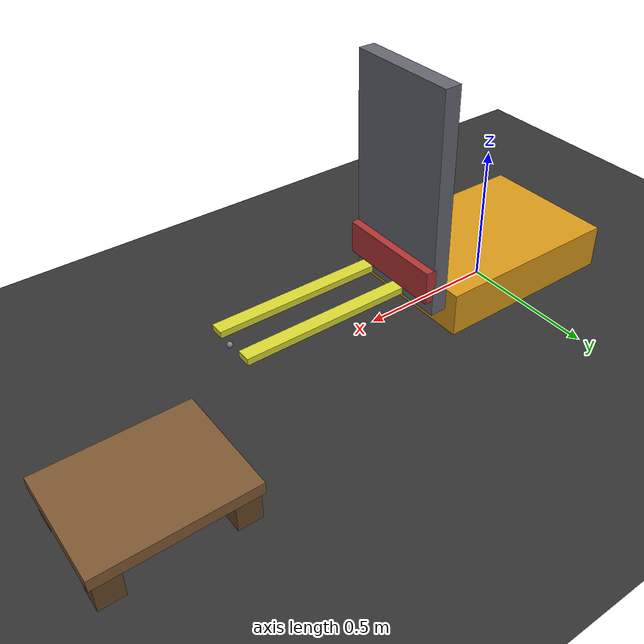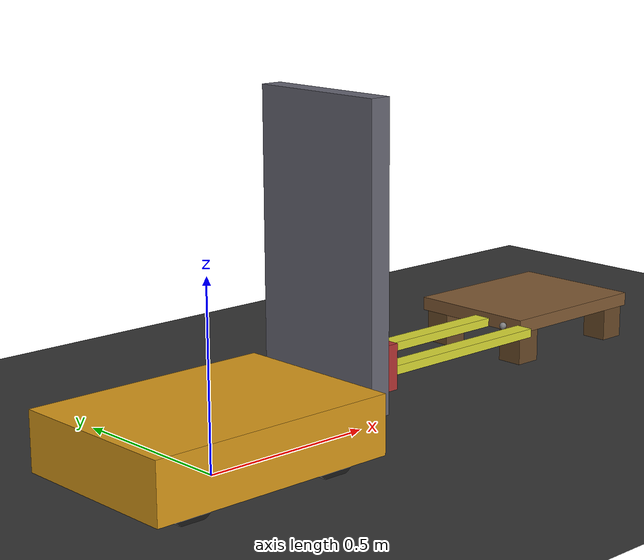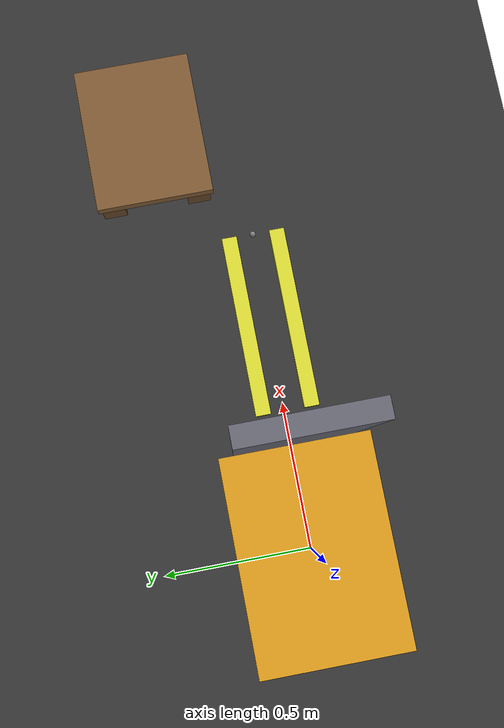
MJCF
<mujoco>
  <compiler angle="radian"/>

  <option timestep="0.002"/>

  <default>
    <geom friction="1.0 0.05 0.01"/>
  </default>

  <worldbody>
    <light pos="0 -2 3" dir="0 0.5 -1"/>
    <geom name="floor" type="plane" size="10 10 0.1" rgba="0.2 0.2 0.2 1"/>

    <!-- ===== AMR 底盤（平面式簡化模型：x/y 滑動 + 偏航旋轉）===== -->
    <body name="base" pos="0 0 0.11">
      <joint name="move_x" type="slide" axis="1 0 0" damping="2"/>
      <joint name="move_y" type="slide" axis="0 1 0" damping="2"/>
      <joint name="yaw"    type="hinge" axis="0 0 1" damping="2"/>
      <geom type="box" size="0.35 0.25 0.08" rgba="0.85 0.6 0.1 1"/>
      <!-- 裝飾用輪子（不參與驅動） -->
      <geom type="cylinder" size="0.08 0.03" pos=" 0.22  0.18 -0.04" euler="1.5708 0 0" rgba="0.1 0.1 0.1 1" contype="0" conaffinity="0"/>
      <geom type="cylinder" size="0.08 0.03" pos=" 0.22 -0.18 -0.04" euler="1.5708 0 0" rgba="0.1 0.1 0.1 1" contype="0" conaffinity="0"/>
      <geom type="cylinder" size="0.08 0.03" pos="-0.22  0.18 -0.04" euler="1.5708 0 0" rgba="0.1 0.1 0.1 1" contype="0" conaffinity="0"/>
      <geom type="cylinder" size="0.08 0.03" pos="-0.22 -0.18 -0.04" euler="1.5708 0 0" rgba="0.1 0.1 0.1 1" contype="0" conaffinity="0"/>

      <!-- ===== 門架（mast，固定於底盤前方）===== -->
      <geom type="box" size="0.03 0.2 0.4" pos="0.38 0 0.4" rgba="0.4 0.4 0.45 1"/>

      <!-- ===== 牙叉滑架：上下（lift）===== -->
      <body name="carriage" pos="0.42 0 0.12">
        <joint name="lift" type="slide" axis="0 0 1" range="0 0.65" damping="5"/>
        <geom type="box" size="0.02 0.2 0.06" rgba="0.7 0.2 0.2 1"/>

        <!-- ===== 牙叉：左右側移（sideshift）===== -->
        <body name="forks" pos="0.04 0 0">
          <joint name="sideshift" type="slide" axis="0 1 0" range="-0.12 0.12" damping="2"/>
          <geom type="box" size="0.3 0.025 0.012" pos="0.3  0.08 -0.05" rgba="0.85 0.85 0.2 1"/>
          <geom type="box" size="0.3 0.025 0.012" pos="0.3 -0.08 -0.05" rgba="0.85 0.85 0.2 1"/>
          <site name="fork_tip" pos="0.6 0 -0.05" size="0.01"/>
        </body>
      </body>
    </body>

    <!-- 地板上的棧板貨物：板面 + 四隻腳（底下留空隙給牙叉插入） -->
    <body name="pallet" pos="1.5 0.3 0">
      <freejoint/>
      <geom type="box" size="0.25 0.2 0.02" pos="0 0 0.12" rgba="0.5 0.35 0.2 1" mass="5"/>
      <geom type="box" size="0.04 0.04 0.05" pos=" 0.2  0.15 0.05" rgba="0.4 0.28 0.15 1"/>
      <geom type="box" size="0.04 0.04 0.05" pos=" 0.2 -0.15 0.05" rgba="0.4 0.28 0.15 1"/>
      <geom type="box" size="0.04 0.04 0.05" pos="-0.2  0.15 0.05" rgba="0.4 0.28 0.15 1"/>
      <geom type="box" size="0.04 0.04 0.05" pos="-0.2 -0.15 0.05" rgba="0.4 0.28 0.15 1"/>
    </body>
  </worldbody>

  <actuator>
    <velocity name="vx"    joint="move_x" kv="60" ctrlrange="-1.5 1.5"/>
    <velocity name="vy"    joint="move_y" kv="60" ctrlrange="-1.5 1.5"/>
    <velocity name="wyaw"  joint="yaw"    kv="10" ctrlrange="-2 2"/>
    <position name="lift_ctl"  joint="lift"      kp="2000" ctrllimited="true" ctrlrange="0 0.65"/>
    <position name="shift_ctl" joint="sideshift" kp="100" ctrllimited="true" ctrlrange="-0.12 0.12"/>
  </actuator>

  <sensor>
    <jointpos joint="lift"/>
    <jointpos joint="sideshift"/>
    <framepos objtype="site" objname="fork_tip"/>
  </sensor>
</mujoco>
